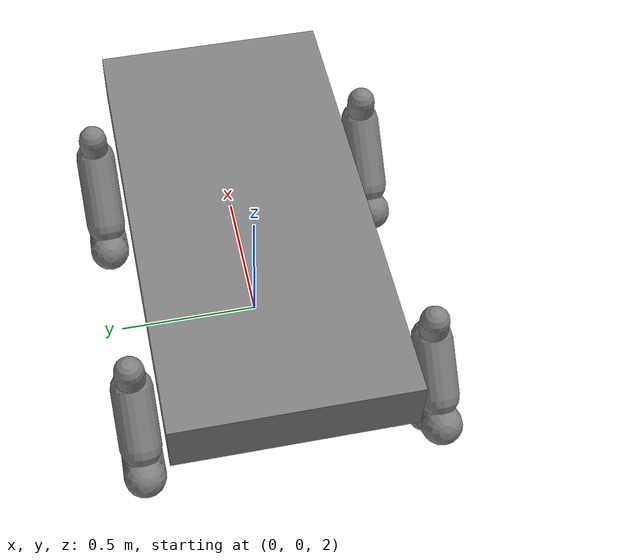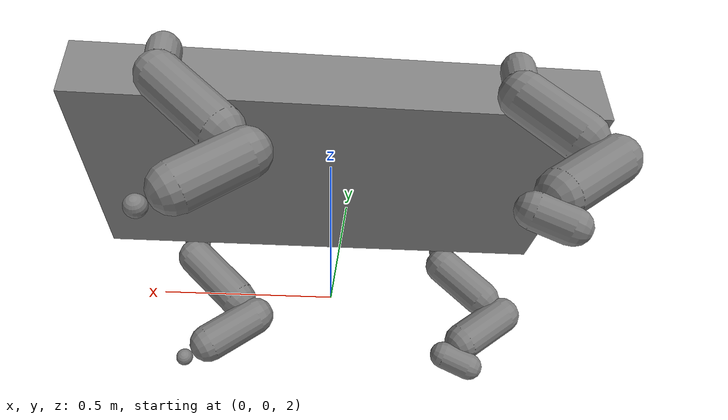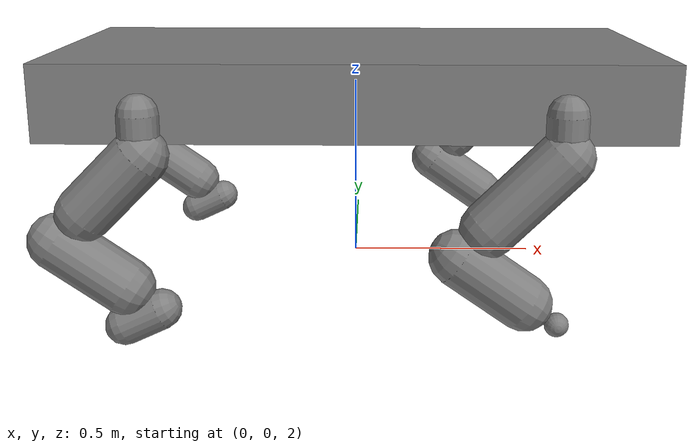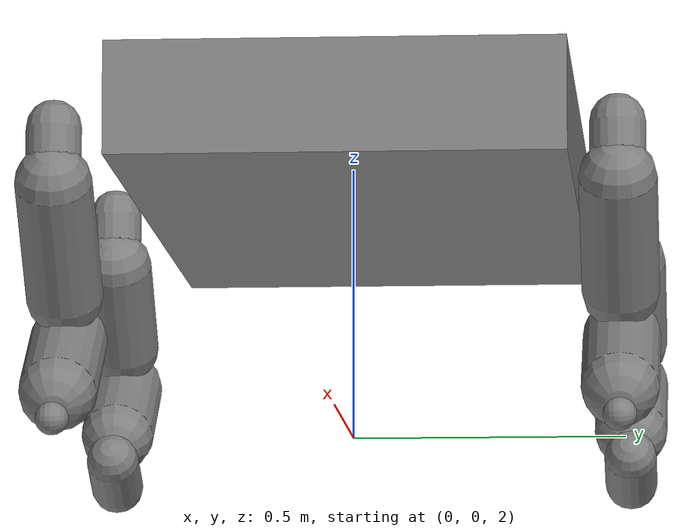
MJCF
<mujoco model="xmlrobot_pre_28">
	<compiler inertiafromgeom="true" />
	<option gravity="0 0 -9.8" />
	<size nconmax="500" njmax="1000" />
	<custom />
	<default />
	<asset />
	<worldbody>
		<body name="root" pos="0 0 2.5" quat="0.707 0.0 0.0 -0.707">
			<geom density="5.0" friction="1.5 0.005 0.0001" name="geomroot" pos="-0.02 0 0.07" size="0.15 0.15 0.02" type="box" quat="1.0 0.0 0.0 0.0" />
			<body name="body1" pos="0 0 0" quat="1.0 0.0 0.0 0.0">
				<geom density="5.0" friction="1.5 0.005 0.0001" name="geombody1" pos="-0.02 0 0" size="0.4 0.8 0.1" type="box" quat="1.0 0.0 0.0 0.0" />
				<joint armature="0.005" axis="0 0 1" damping="1.0" limited="true" name="joint_joint1" pos="0 0 0" range="-5 5" stiffness="2.0" type="hinge" />
				<body name="limbmount4" pos="0.5 -0.5 0" quat="0.70711 0.0 0.70711 0.0">
					<geom density="500" friction="1.5 0.005 0.0001" fromto="0 0 0 0.05 0 0" name="geomlimbmount4" size="0.05" type="capsule" quat="1.0 0.0 0.0 0.0" />
					<joint armature="0.005" axis="0 1 0" damping="1.0" limited="true" name="joint_joint5" pos="0 0 0" range="-5 5" stiffness="2.0" type="hinge" />
					<body name="limbmount4_new_new" pos="0.1 0 0" quat="0.92388 0.0 0.0 -0.38268">
						<geom density="500" friction="1.5 0.005 0.0001" fromto="0 0 0 0.2 0 0" name="geomlimbmount4_new_new" size="0.07" type="capsule" quat="1.0 0.0 0.0 0.0" />
						<joint armature="0.005" axis="0 0 1" damping="1.0" limited="true" name="joint_limbmount4_new" pos="0 0 0" range="-45 45" stiffness="2.0" type="hinge" />
						<body name="limbmount4_new_new_new_new" pos="0.30000000000000004 0 0" quat="0.64279 0.0 0.0 0.76604">
							<geom density="500" friction="1.5 0.005 0.0001" fromto="0 0 0 0.2 0 0" name="geomlimbmount4_new_new_new_new" size="0.07" type="capsule" quat="1.0 0.0 0.0 0.0" />
							<joint armature="0.005" axis="0 0 1" damping="1.0" limited="true" name="joint_limbmount4_new_new_new" pos="0 0 0" range="-45 45" stiffness="2.0" type="hinge" />
							<body name="limbmount4_new_new_new_new_new_new" pos="0.30000000000000004 0 0" quat="0.5 0.0 0.0 -0.86603">
								<geom density="500" friction="1.5 0.005 0.0001" fromto="0 0 0 0.1 0 0" name="geomlimbmount4_new_new_new_new_new_new" size="0.05" type="capsule" quat="1.0 0.0 0.0 0.0" />
								<joint armature="0.005" axis="0 0 1" damping="1.0" limited="true" name="joint_limbmount4_new_new_new_new_new" pos="0 0 0" range="-25 25" stiffness="2.0" type="hinge" />
							</body>
						</body>
					</body>
				</body>
				<body name="limbmount3" pos="-0.5 -0.5 0" quat="0.70711 0.0 0.70711 0.0">
					<geom density="500" friction="1.5 0.005 0.0001" fromto="0 0 0 0.05 0 0" name="geomlimbmount3" size="0.05" type="capsule" quat="1.0 0.0 0.0 0.0" />
					<joint armature="0.005" axis="0 1 0" damping="1.0" limited="true" name="joint_joint4" pos="0 0 0" range="-5 5" stiffness="2.0" type="hinge" />
					<body name="upper_link_b4" pos="0.1 0 0" quat="0.92388 0.0 0.0 -0.38268">
						<geom density="500" friction="1.5 0.005 0.0001" fromto="0 0 0 0.2 0 0" name="geomupper_link_b4" size="0.07" type="capsule" quat="1.0 0.0 0.0 0.0" />
						<joint armature="0.005" axis="0 0 1" damping="1.0" limited="true" name="joint_joint11" pos="0 0 0" range="-45 45" stiffness="2.0" type="hinge" />
						<body name="lower_link_f2" pos="0.30000000000000004 0 0" quat="0.64279 0.0 0.0 0.76604">
							<geom density="500" friction="1.5 0.005 0.0001" fromto="0 0 0 0.2 0 0" name="geomlower_link_f2" size="0.07" type="capsule" quat="1.0 0.0 0.0 0.0" />
							<joint armature="0.005" axis="0 0 1" damping="1.0" limited="true" name="joint_joint12" pos="0 0 0" range="-45 45" stiffness="2.0" type="hinge" />
							<body name="foot_21" pos="0.30000000000000004 0 0" quat="0.5 0.0 0.0 -0.86603">
								<geom density="500" friction="1.5 0.005 0.0001" fromto="0 0 0 0.1 0 0" name="geomfoot_21" size="0.05" type="capsule" quat="1.0 0.0 0.0 0.0" />
								<joint armature="0.005" axis="0 0 1" damping="1.0" limited="true" name="joint_joint13" pos="0 0 0" range="-25 25" stiffness="2.0" type="hinge" />
							</body>
						</body>
					</body>
				</body>
				<body name="limbmount2" pos="-0.5 0.5 0" quat="0.70711 0.0 0.70711 0.0">
					<geom density="500" friction="1.5 0.005 0.0001" fromto="0 0 0 0.05 0 0" name="geomlimbmount2" size="0.05" type="capsule" quat="1.0 0.0 0.0 0.0" />
					<joint armature="0.005" axis="0 1 0" damping="1.0" limited="true" name="joint_joint3" pos="0 0 0" range="-5 5" stiffness="2.0" type="hinge" />
					<body name="limbmount2_new_new" pos="0.1 0 0" quat="0.92388 0.0 0.0 -0.38268">
						<geom density="500" friction="1.5 0.005 0.0001" fromto="0 0 0 0.25 0 0" name="geomlimbmount2_new_new" size="0.07" type="capsule" quat="1.0 0.0 0.0 0.0" />
						<joint armature="0.005" axis="0 0 1" damping="1.0" limited="true" name="joint_limbmount2_new" pos="0 0 0" range="-45 45" stiffness="2.0" type="hinge" />
						<body name="limbmount2_new_new_new_new" pos="0.35 0 0" quat="0.64279 0.0 0.0 0.76604">
							<geom density="500" friction="1.5 0.005 0.0001" fromto="0 0 0 0.2 0 0" name="geomlimbmount2_new_new_new_new" size="0.07" type="capsule" quat="1.0 0.0 0.0 0.0" />
							<joint armature="0.005" axis="0 0 1" damping="1.0" limited="true" name="joint_limbmount2_new_new_new" pos="0 0 0" range="-45 45" stiffness="2.0" type="hinge" />
							<body name="limbmount2_new_new_new_new_new_new" pos="0.30000000000000004 0 0" quat="1.0 0.0 0.0 0.0">
								<geom density="500" friction="1.5 0.005 0.0001" name="geomlimbmount2_new_new_new_new_new_new" pos="0 0 0" size="0.03" type="sphere" quat="1.0 0.0 0.0 0.0" />
								<joint armature="0.005" axis="1 0 0" damping="1.0" limited="true" name="joint_limbmount2_new_new_new_new_new" pos="0 0 0" range="-5 5" stiffness="2.0" type="hinge" />
							</body>
						</body>
					</body>
				</body>
				<body name="limbmount1" pos="0.5 0.5 0" quat="0.70711 0.0 0.70711 0.0">
					<geom density="500" friction="1.5 0.005 0.0001" fromto="0 0 0 0.05 0 0" name="geomlimbmount1" size="0.05" type="capsule" quat="1.0 0.0 0.0 0.0" />
					<joint armature="0.005" axis="0 1 0" damping="1.0" limited="true" name="joint_joint2" pos="0 0 0" range="-5 5" stiffness="2.0" type="hinge" />
					<body name="upper_link_b3" pos="0.1 0 0" quat="0.92388 0.0 0.0 -0.38268">
						<geom density="500" friction="1.5 0.005 0.0001" fromto="0 0 0 0.25 0 0" name="geomupper_link_b3" size="0.07" type="capsule" quat="1.0 0.0 0.0 0.0" />
						<joint armature="0.005" axis="0 0 1" damping="1.0" limited="true" name="joint_joint9" pos="0 0 0" range="-45 45" stiffness="2.0" type="hinge" />
						<body name="lower_link_f3" pos="0.35 0 0" quat="0.64279 0.0 0.0 0.76604">
							<geom density="500" friction="1.5 0.005 0.0001" fromto="0 0 0 0.2 0 0" name="geomlower_link_f3" size="0.07" type="capsule" quat="1.0 0.0 0.0 0.0" />
							<joint armature="0.005" axis="0 0 1" damping="1.0" limited="true" name="joint_joint14" pos="0 0 0" range="-45 45" stiffness="2.0" type="hinge" />
							<body name="foot_link_end2" pos="0.30000000000000004 0 0" quat="1.0 0.0 0.0 0.0">
								<geom density="500" friction="1.5 0.005 0.0001" name="geomfoot_link_end2" pos="0 0 0" size="0.03" type="sphere" quat="1.0 0.0 0.0 0.0" />
								<joint armature="0.005" axis="1 0 0" damping="1.0" limited="true" name="joint_joint16" pos="0 0 0" range="-5 5" stiffness="2.0" type="hinge" />
							</body>
						</body>
					</body>
				</body>
			</body>
		</body>
	</worldbody>
	<actuator>
		<motor ctrllimited="true" ctrlrange="-1 1" gear="22.5" joint="joint_joint1" />
		<motor ctrllimited="true" ctrlrange="-1 1" gear="45" joint="joint_joint5" />
		<motor ctrllimited="true" ctrlrange="-1 1" gear="45" joint="joint_limbmount4_new" />
		<motor ctrllimited="true" ctrlrange="-1 1" gear="45" joint="joint_limbmount4_new_new_new" />
		<motor ctrllimited="true" ctrlrange="-1 1" gear="45" joint="joint_limbmount4_new_new_new_new_new" />
		<motor ctrllimited="true" ctrlrange="-1 1" gear="45" joint="joint_joint4" />
		<motor ctrllimited="true" ctrlrange="-1 1" gear="45" joint="joint_joint11" />
		<motor ctrllimited="true" ctrlrange="-1 1" gear="45" joint="joint_joint12" />
		<motor ctrllimited="true" ctrlrange="-1 1" gear="45" joint="joint_joint13" />
		<motor ctrllimited="true" ctrlrange="-1 1" gear="45" joint="joint_joint3" />
		<motor ctrllimited="true" ctrlrange="-1 1" gear="45" joint="joint_limbmount2_new" />
		<motor ctrllimited="true" ctrlrange="-1 1" gear="45" joint="joint_limbmount2_new_new_new" />
		<motor ctrllimited="true" ctrlrange="-1 1" gear="45" joint="joint_limbmount2_new_new_new_new_new" />
		<motor ctrllimited="true" ctrlrange="-1 1" gear="45" joint="joint_joint2" />
		<motor ctrllimited="true" ctrlrange="-1 1" gear="45" joint="joint_joint9" />
		<motor ctrllimited="true" ctrlrange="-1 1" gear="45" joint="joint_joint14" />
		<motor ctrllimited="true" ctrlrange="-1 1" gear="45" joint="joint_joint16" />
	</actuator>
</mujoco>
